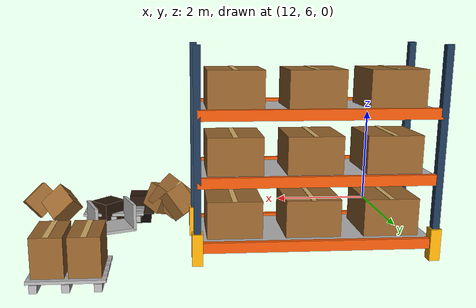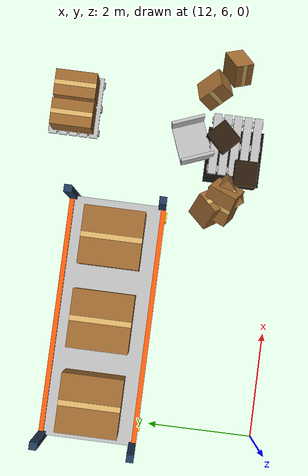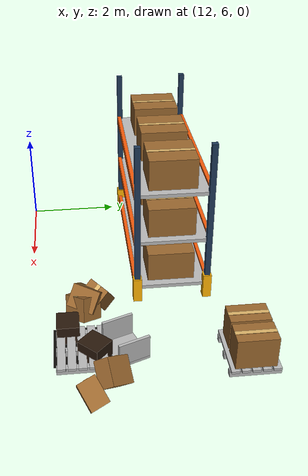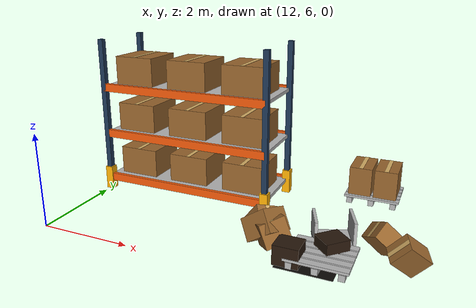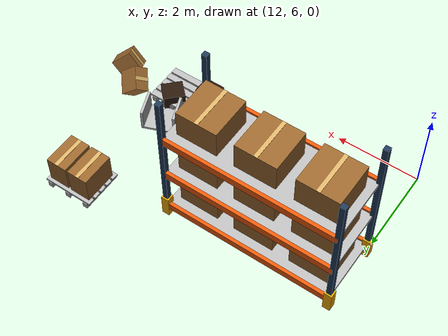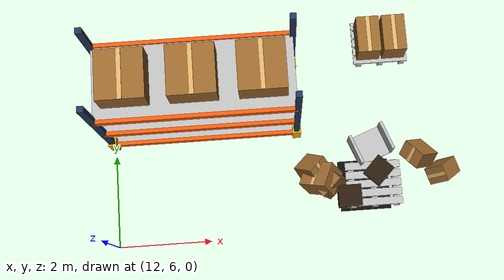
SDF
<sdf version="1.9">
 <world name="factory">
  <model name="rack_1_1_3">
   <static>true</static>
   <pose>14 9 0 0 0 0</pose>
   <link name="body">
    <visual name="post0_visual">
     <pose>-2 -0.75 1.8 0 0 0</pose>
     <geometry><box><size>0.12 0.12 3.6</size></box></geometry>
     <material><ambient>.12 .22 .34 1</ambient><diffuse>.12 .22 .34 1</diffuse></material>
    </visual>
    <collision name="post0_collision">
     <pose>-2 -0.75 1.8 0 0 0</pose>
     <geometry><box><size>0.12 0.12 3.6</size></box></geometry>
    </collision>
    <visual name="guard0_visual">
     <pose>-2 -0.75 0.275 0 0 0</pose>
     <geometry><box><size>0.18 0.18 0.55</size></box></geometry>
     <material><ambient>1 .7 .02 1</ambient><diffuse>1 .7 .02 1</diffuse></material>
    </visual>
    <collision name="guard0_collision">
     <pose>-2 -0.75 0.275 0 0 0</pose>
     <geometry><box><size>0.18 0.18 0.55</size></box></geometry>
    </collision>
    <visual name="post1_visual">
     <pose>2 -0.75 1.8 0 0 0</pose>
     <geometry><box><size>0.12 0.12 3.6</size></box></geometry>
     <material><ambient>.12 .22 .34 1</ambient><diffuse>.12 .22 .34 1</diffuse></material>
    </visual>
    <collision name="post1_collision">
     <pose>2 -0.75 1.8 0 0 0</pose>
     <geometry><box><size>0.12 0.12 3.6</size></box></geometry>
    </collision>
    <visual name="guard1_visual">
     <pose>2 -0.75 0.275 0 0 0</pose>
     <geometry><box><size>0.18 0.18 0.55</size></box></geometry>
     <material><ambient>1 .7 .02 1</ambient><diffuse>1 .7 .02 1</diffuse></material>
    </visual>
    <collision name="guard1_collision">
     <pose>2 -0.75 0.275 0 0 0</pose>
     <geometry><box><size>0.18 0.18 0.55</size></box></geometry>
    </collision>
    <visual name="post2_visual">
     <pose>-2 0.75 1.8 0 0 0</pose>
     <geometry><box><size>0.12 0.12 3.6</size></box></geometry>
     <material><ambient>.12 .22 .34 1</ambient><diffuse>.12 .22 .34 1</diffuse></material>
    </visual>
    <collision name="post2_collision">
     <pose>-2 0.75 1.8 0 0 0</pose>
     <geometry><box><size>0.12 0.12 3.6</size></box></geometry>
    </collision>
    <visual name="guard2_visual">
     <pose>-2 0.75 0.275 0 0 0</pose>
     <geometry><box><size>0.18 0.18 0.55</size></box></geometry>
     <material><ambient>1 .7 .02 1</ambient><diffuse>1 .7 .02 1</diffuse></material>
    </visual>
    <collision name="guard2_collision">
     <pose>-2 0.75 0.275 0 0 0</pose>
     <geometry><box><size>0.18 0.18 0.55</size></box></geometry>
    </collision>
    <visual name="post3_visual">
     <pose>2 0.75 1.8 0 0 0</pose>
     <geometry><box><size>0.12 0.12 3.6</size></box></geometry>
     <material><ambient>.12 .22 .34 1</ambient><diffuse>.12 .22 .34 1</diffuse></material>
    </visual>
    <collision name="post3_collision">
     <pose>2 0.75 1.8 0 0 0</pose>
     <geometry><box><size>0.12 0.12 3.6</size></box></geometry>
    </collision>
    <visual name="guard3_visual">
     <pose>2 0.75 0.275 0 0 0</pose>
     <geometry><box><size>0.18 0.18 0.55</size></box></geometry>
     <material><ambient>1 .7 .02 1</ambient><diffuse>1 .7 .02 1</diffuse></material>
    </visual>
    <collision name="guard3_collision">
     <pose>2 0.75 0.275 0 0 0</pose>
     <geometry><box><size>0.18 0.18 0.55</size></box></geometry>
    </collision>
    <visual name="shelf0_visual">
     <pose>0 0 0.3 0 0 0</pose>
     <geometry><mesh><uri>model://factory_scene_assets/meshes/wood_010.dae</uri></mesh></geometry>
    </visual>
    <collision name="shelf0_collision">
     <pose>0 0 0.3 0 0 0</pose>
     <geometry><box><size>4 1.5 0.08</size></box></geometry>
    </collision>
    <visual name="beam0_0_visual">
     <pose>0 -0.77 0.3 0 0 0</pose>
     <geometry><box><size>4 0.08 0.18</size></box></geometry>
     <material><ambient>.95 .35 .035 1</ambient><diffuse>.95 .35 .035 1</diffuse></material>
    </visual>
    <collision name="beam0_0_collision">
     <pose>0 -0.77 0.3 0 0 0</pose>
     <geometry><box><size>4 0.08 0.18</size></box></geometry>
    </collision>
    <visual name="beam0_1_visual">
     <pose>0 0.77 0.3 0 0 0</pose>
     <geometry><box><size>4 0.08 0.18</size></box></geometry>
     <material><ambient>.95 .35 .035 1</ambient><diffuse>.95 .35 .035 1</diffuse></material>
    </visual>
    <collision name="beam0_1_collision">
     <pose>0 0.77 0.3 0 0 0</pose>
     <geometry><box><size>4 0.08 0.18</size></box></geometry>
    </collision>
    <visual name="cargo0_0_visual">
     <pose>-1.35 0 0.665 0 0 0</pose>
     <geometry><box><size>0.95 1 0.65</size></box></geometry>
     <material><ambient>.60 .40 .18 1</ambient><diffuse>.60 .40 .18 1</diffuse></material>
    </visual>
    <collision name="cargo0_0_collision">
     <pose>-1.35 0 0.665 0 0 0</pose>
     <geometry><box><size>0.95 1 0.65</size></box></geometry>
    </collision>
    <visual name="cargo0_0_tape_visual">
     <pose>-1.35 0 0.993 0 0 0</pose>
     <geometry><box><size>0.09 1 0.006</size></box></geometry>
     <material><ambient>.85 .69 .4 1</ambient><diffuse>.85 .69 .4 1</diffuse></material>
    </visual>
    <visual name="cargo0_1_visual">
     <pose>0 0 0.665 0 0 0</pose>
     <geometry><box><size>0.95 1 0.65</size></box></geometry>
     <material><ambient>.60 .40 .18 1</ambient><diffuse>.60 .40 .18 1</diffuse></material>
    </visual>
    <collision name="cargo0_1_collision">
     <pose>0 0 0.665 0 0 0</pose>
     <geometry><box><size>0.95 1 0.65</size></box></geometry>
    </collision>
    <visual name="cargo0_1_tape_visual">
     <pose>0 0 0.993 0 0 0</pose>
     <geometry><box><size>0.09 1 0.006</size></box></geometry>
     <material><ambient>.85 .69 .4 1</ambient><diffuse>.85 .69 .4 1</diffuse></material>
    </visual>
    <visual name="cargo0_2_visual">
     <pose>1.35 0 0.665 0 0 0</pose>
     <geometry><box><size>0.95 1 0.65</size></box></geometry>
     <material><ambient>.60 .40 .18 1</ambient><diffuse>.60 .40 .18 1</diffuse></material>
    </visual>
    <collision name="cargo0_2_collision">
     <pose>1.35 0 0.665 0 0 0</pose>
     <geometry><box><size>0.95 1 0.65</size></box></geometry>
    </collision>
    <visual name="cargo0_2_tape_visual">
     <pose>1.35 0 0.993 0 0 0</pose>
     <geometry><box><size>0.09 1 0.006</size></box></geometry>
     <material><ambient>.85 .69 .4 1</ambient><diffuse>.85 .69 .4 1</diffuse></material>
    </visual>
    <visual name="shelf1_visual">
     <pose>0 0 1.4 0 0 0</pose>
     <geometry><mesh><uri>model://factory_scene_assets/meshes/wood_010.dae</uri></mesh></geometry>
    </visual>
    <collision name="shelf1_collision">
     <pose>0 0 1.4 0 0 0</pose>
     <geometry><box><size>4 1.5 0.08</size></box></geometry>
    </collision>
    <visual name="beam1_0_visual">
     <pose>0 -0.77 1.4 0 0 0</pose>
     <geometry><box><size>4 0.08 0.18</size></box></geometry>
     <material><ambient>.95 .35 .035 1</ambient><diffuse>.95 .35 .035 1</diffuse></material>
    </visual>
    <collision name="beam1_0_collision">
     <pose>0 -0.77 1.4 0 0 0</pose>
     <geometry><box><size>4 0.08 0.18</size></box></geometry>
    </collision>
    <visual name="beam1_1_visual">
     <pose>0 0.77 1.4 0 0 0</pose>
     <geometry><box><size>4 0.08 0.18</size></box></geometry>
     <material><ambient>.95 .35 .035 1</ambient><diffuse>.95 .35 .035 1</diffuse></material>
    </visual>
    <collision name="beam1_1_collision">
     <pose>0 0.77 1.4 0 0 0</pose>
     <geometry><box><size>4 0.08 0.18</size></box></geometry>
    </collision>
    <visual name="cargo1_0_visual">
     <pose>-1.35 0 1.765 0 0 0</pose>
     <geometry><box><size>0.95 1 0.65</size></box></geometry>
     <material><ambient>.60 .40 .18 1</ambient><diffuse>.60 .40 .18 1</diffuse></material>
    </visual>
    <collision name="cargo1_0_collision">
     <pose>-1.35 0 1.765 0 0 0</pose>
     <geometry><box><size>0.95 1 0.65</size></box></geometry>
    </collision>
    <visual name="cargo1_0_tape_visual">
     <pose>-1.35 0 2.093 0 0 0</pose>
     <geometry><box><size>0.09 1 0.006</size></box></geometry>
     <material><ambient>.85 .69 .4 1</ambient><diffuse>.85 .69 .4 1</diffuse></material>
    </visual>
    <visual name="cargo1_1_visual">
     <pose>0 0 1.765 0 0 0</pose>
     <geometry><box><size>0.95 1 0.65</size></box></geometry>
     <material><ambient>.60 .40 .18 1</ambient><diffuse>.60 .40 .18 1</diffuse></material>
    </visual>
    <collision name="cargo1_1_collision">
     <pose>0 0 1.765 0 0 0</pose>
     <geometry><box><size>0.95 1 0.65</size></box></geometry>
    </collision>
    <visual name="cargo1_1_tape_visual">
     <pose>0 0 2.093 0 0 0</pose>
     <geometry><box><size>0.09 1 0.006</size></box></geometry>
     <material><ambient>.85 .69 .4 1</ambient><diffuse>.85 .69 .4 1</diffuse></material>
    </visual>
    <visual name="cargo1_2_visual">
     <pose>1.35 0 1.765 0 0 0</pose>
     <geometry><box><size>0.95 1 0.65</size></box></geometry>
     <material><ambient>.60 .40 .18 1</ambient><diffuse>.60 .40 .18 1</diffuse></material>
    </visual>
    <collision name="cargo1_2_collision">
     <pose>1.35 0 1.765 0 0 0</pose>
     <geometry><box><size>0.95 1 0.65</size></box></geometry>
    </collision>
    <visual name="cargo1_2_tape_visual">
     <pose>1.35 0 2.093 0 0 0</pose>
     <geometry><box><size>0.09 1 0.006</size></box></geometry>
     <material><ambient>.85 .69 .4 1</ambient><diffuse>.85 .69 .4 1</diffuse></material>
    </visual>
    <visual name="shelf2_visual">
     <pose>0 0 2.5 0 0 0</pose>
     <geometry><mesh><uri>model://factory_scene_assets/meshes/wood_010.dae</uri></mesh></geometry>
    </visual>
    <collision name="shelf2_collision">
     <pose>0 0 2.5 0 0 0</pose>
     <geometry><box><size>4 1.5 0.08</size></box></geometry>
    </collision>
    <visual name="beam2_0_visual">
     <pose>0 -0.77 2.5 0 0 0</pose>
     <geometry><box><size>4 0.08 0.18</size></box></geometry>
     <material><ambient>.95 .35 .035 1</ambient><diffuse>.95 .35 .035 1</diffuse></material>
    </visual>
    <collision name="beam2_0_collision">
     <pose>0 -0.77 2.5 0 0 0</pose>
     <geometry><box><size>4 0.08 0.18</size></box></geometry>
    </collision>
    <visual name="beam2_1_visual">
     <pose>0 0.77 2.5 0 0 0</pose>
     <geometry><box><size>4 0.08 0.18</size></box></geometry>
     <material><ambient>.95 .35 .035 1</ambient><diffuse>.95 .35 .035 1</diffuse></material>
    </visual>
    <collision name="beam2_1_collision">
     <pose>0 0.77 2.5 0 0 0</pose>
     <geometry><box><size>4 0.08 0.18</size></box></geometry>
    </collision>
    <visual name="cargo2_0_visual">
     <pose>-1.35 0 2.865 0 0 0</pose>
     <geometry><box><size>0.95 1 0.65</size></box></geometry>
     <material><ambient>.60 .40 .18 1</ambient><diffuse>.60 .40 .18 1</diffuse></material>
    </visual>
    <collision name="cargo2_0_collision">
     <pose>-1.35 0 2.865 0 0 0</pose>
     <geometry><box><size>0.95 1 0.65</size></box></geometry>
    </collision>
    <visual name="cargo2_0_tape_visual">
     <pose>-1.35 0 3.193 0 0 0</pose>
     <geometry><box><size>0.09 1 0.006</size></box></geometry>
     <material><ambient>.85 .69 .4 1</ambient><diffuse>.85 .69 .4 1</diffuse></material>
    </visual>
    <visual name="cargo2_1_visual">
     <pose>0 0 2.865 0 0 0</pose>
     <geometry><box><size>0.95 1 0.65</size></box></geometry>
     <material><ambient>.60 .40 .18 1</ambient><diffuse>.60 .40 .18 1</diffuse></material>
    </visual>
    <collision name="cargo2_1_collision">
     <pose>0 0 2.865 0 0 0</pose>
     <geometry><box><size>0.95 1 0.65</size></box></geometry>
    </collision>
    <visual name="cargo2_1_tape_visual">
     <pose>0 0 3.193 0 0 0</pose>
     <geometry><box><size>0.09 1 0.006</size></box></geometry>
     <material><ambient>.85 .69 .4 1</ambient><diffuse>.85 .69 .4 1</diffuse></material>
    </visual>
    <visual name="cargo2_2_visual">
     <pose>1.35 0 2.865 0 0 0</pose>
     <geometry><box><size>0.95 1 0.65</size></box></geometry>
     <material><ambient>.60 .40 .18 1</ambient><diffuse>.60 .40 .18 1</diffuse></material>
    </visual>
    <collision name="cargo2_2_collision">
     <pose>1.35 0 2.865 0 0 0</pose>
     <geometry><box><size>0.95 1 0.65</size></box></geometry>
    </collision>
    <visual name="cargo2_2_tape_visual">
     <pose>1.35 0 3.193 0 0 0</pose>
     <geometry><box><size>0.09 1 0.006</size></box></geometry>
     <material><ambient>.85 .69 .4 1</ambient><diffuse>.85 .69 .4 1</diffuse></material>
    </visual>
   </link>
  </model>
  <model name="organized_pallet_1_3">
   <static>true</static>
   <pose>18 10.2 0 0 0 0</pose>
   <link name="body">
    <visual name="runner0_visual">
     <pose>-0.48 0 0.065 0 0 0</pose>
     <geometry><mesh><uri>model://factory_scene_assets/meshes/wood_011.dae</uri></mesh></geometry>
    </visual>
    <collision name="runner0_collision">
     <pose>-0.48 0 0.065 0 0 0</pose>
     <geometry><box><size>0.12 1 0.13</size></box></geometry>
    </collision>
    <visual name="runner1_visual">
     <pose>0 0 0.065 0 0 0</pose>
     <geometry><mesh><uri>model://factory_scene_assets/meshes/wood_011.dae</uri></mesh></geometry>
    </visual>
    <collision name="runner1_collision">
     <pose>0 0 0.065 0 0 0</pose>
     <geometry><box><size>0.12 1 0.13</size></box></geometry>
    </collision>
    <visual name="runner2_visual">
     <pose>0.48 0 0.065 0 0 0</pose>
     <geometry><mesh><uri>model://factory_scene_assets/meshes/wood_011.dae</uri></mesh></geometry>
    </visual>
    <collision name="runner2_collision">
     <pose>0.48 0 0.065 0 0 0</pose>
     <geometry><box><size>0.12 1 0.13</size></box></geometry>
    </collision>
    <visual name="plank0_visual">
     <pose>0 -0.4 0.155 0 0 0</pose>
     <geometry><mesh><uri>model://factory_scene_assets/meshes/wood_012.dae</uri></mesh></geometry>
    </visual>
    <collision name="plank0_collision">
     <pose>0 -0.4 0.155 0 0 0</pose>
     <geometry><box><size>1.2 0.16 0.05</size></box></geometry>
    </collision>
    <visual name="plank1_visual">
     <pose>0 -0.2 0.155 0 0 0</pose>
     <geometry><mesh><uri>model://factory_scene_assets/meshes/wood_012.dae</uri></mesh></geometry>
    </visual>
    <collision name="plank1_collision">
     <pose>0 -0.2 0.155 0 0 0</pose>
     <geometry><box><size>1.2 0.16 0.05</size></box></geometry>
    </collision>
    <visual name="plank2_visual">
     <pose>0 0 0.155 0 0 0</pose>
     <geometry><mesh><uri>model://factory_scene_assets/meshes/wood_012.dae</uri></mesh></geometry>
    </visual>
    <collision name="plank2_collision">
     <pose>0 0 0.155 0 0 0</pose>
     <geometry><box><size>1.2 0.16 0.05</size></box></geometry>
    </collision>
    <visual name="plank3_visual">
     <pose>0 0.2 0.155 0 0 0</pose>
     <geometry><mesh><uri>model://factory_scene_assets/meshes/wood_012.dae</uri></mesh></geometry>
    </visual>
    <collision name="plank3_collision">
     <pose>0 0.2 0.155 0 0 0</pose>
     <geometry><box><size>1.2 0.16 0.05</size></box></geometry>
    </collision>
    <visual name="plank4_visual">
     <pose>0 0.4 0.155 0 0 0</pose>
     <geometry><mesh><uri>model://factory_scene_assets/meshes/wood_012.dae</uri></mesh></geometry>
    </visual>
    <collision name="plank4_collision">
     <pose>0 0.4 0.155 0 0 0</pose>
     <geometry><box><size>1.2 0.16 0.05</size></box></geometry>
    </collision>
    <visual name="load0_visual">
     <pose>-0.28 0 0.505 0 0 0</pose>
     <geometry><box><size>0.5 0.8 0.65</size></box></geometry>
     <material><ambient>.60 .40 .18 1</ambient><diffuse>.60 .40 .18 1</diffuse></material>
    </visual>
    <collision name="load0_collision">
     <pose>-0.28 0 0.505 0 0 0</pose>
     <geometry><box><size>0.5 0.8 0.65</size></box></geometry>
    </collision>
    <visual name="load0_tape_visual">
     <pose>-0.28 0 0.833 0 0 0</pose>
     <geometry><box><size>0.09 0.8 0.006</size></box></geometry>
     <material><ambient>.85 .69 .4 1</ambient><diffuse>.85 .69 .4 1</diffuse></material>
    </visual>
    <visual name="load1_visual">
     <pose>0.28 0 0.505 0 0 0</pose>
     <geometry><box><size>0.5 0.8 0.65</size></box></geometry>
     <material><ambient>.60 .40 .18 1</ambient><diffuse>.60 .40 .18 1</diffuse></material>
    </visual>
    <collision name="load1_collision">
     <pose>0.28 0 0.505 0 0 0</pose>
     <geometry><box><size>0.5 0.8 0.65</size></box></geometry>
    </collision>
    <visual name="load1_tape_visual">
     <pose>0.28 0 0.833 0 0 0</pose>
     <geometry><box><size>0.09 0.8 0.006</size></box></geometry>
     <material><ambient>.85 .69 .4 1</ambient><diffuse>.85 .69 .4 1</diffuse></material>
    </visual>
   </link>
  </model>
  <model name="fallen_pallet_5">
   <static>true</static>
   <pose>17.6 7 0 0 0 0</pose>
   <link name="body">
    <visual name="runner0_visual">
     <pose>-0.48 0 0.065 0 0 0</pose>
     <geometry><mesh><uri>model://factory_scene_assets/meshes/wood_011.dae</uri></mesh></geometry>
    </visual>
    <collision name="runner0_collision">
     <pose>-0.48 0 0.065 0 0 0</pose>
     <geometry><box><size>0.12 1 0.13</size></box></geometry>
    </collision>
    <visual name="runner1_visual">
     <pose>0 0 0.065 0 0 0</pose>
     <geometry><mesh><uri>model://factory_scene_assets/meshes/wood_011.dae</uri></mesh></geometry>
    </visual>
    <collision name="runner1_collision">
     <pose>0 0 0.065 0 0 0</pose>
     <geometry><box><size>0.12 1 0.13</size></box></geometry>
    </collision>
    <visual name="runner2_visual">
     <pose>0.48 0 0.065 0 0 0</pose>
     <geometry><mesh><uri>model://factory_scene_assets/meshes/wood_011.dae</uri></mesh></geometry>
    </visual>
    <collision name="runner2_collision">
     <pose>0.48 0 0.065 0 0 0</pose>
     <geometry><box><size>0.12 1 0.13</size></box></geometry>
    </collision>
    <visual name="plank0_visual">
     <pose>0 -0.4 0.155 0 0 0</pose>
     <geometry><mesh><uri>model://factory_scene_assets/meshes/wood_012.dae</uri></mesh></geometry>
    </visual>
    <collision name="plank0_collision">
     <pose>0 -0.4 0.155 0 0 0</pose>
     <geometry><box><size>1.2 0.16 0.05</size></box></geometry>
    </collision>
    <visual name="plank1_visual">
     <pose>0 -0.2 0.155 0 0 0</pose>
     <geometry><mesh><uri>model://factory_scene_assets/meshes/wood_012.dae</uri></mesh></geometry>
    </visual>
    <collision name="plank1_collision">
     <pose>0 -0.2 0.155 0 0 0</pose>
     <geometry><box><size>1.2 0.16 0.05</size></box></geometry>
    </collision>
    <visual name="plank2_visual">
     <pose>0 0 0.155 0 0 0</pose>
     <geometry><mesh><uri>model://factory_scene_assets/meshes/wood_012.dae</uri></mesh></geometry>
    </visual>
    <collision name="plank2_collision">
     <pose>0 0 0.155 0 0 0</pose>
     <geometry><box><size>1.2 0.16 0.05</size></box></geometry>
    </collision>
    <visual name="plank3_visual">
     <pose>0 0.2 0.155 0 0 0</pose>
     <geometry><mesh><uri>model://factory_scene_assets/meshes/wood_012.dae</uri></mesh></geometry>
    </visual>
    <collision name="plank3_collision">
     <pose>0 0.2 0.155 0 0 0</pose>
     <geometry><box><size>1.2 0.16 0.05</size></box></geometry>
    </collision>
    <visual name="plank4_visual">
     <pose>0 0.4 0.155 0 0 0</pose>
     <geometry><mesh><uri>model://factory_scene_assets/meshes/wood_012.dae</uri></mesh></geometry>
    </visual>
    <collision name="plank4_collision">
     <pose>0 0.4 0.155 0 0 0</pose>
     <geometry><box><size>1.2 0.16 0.05</size></box></geometry>
    </collision>
   </link>
  </model>
  <model name="fallen_box_05_0">
   <static>true</static>
   <pose>18.6 7.544163 0 0 0 0</pose>
   <link name="body">
    <visual name="box_visual">
     <pose>0 0 0.4117971 0.7283645 -0.4586143 -0.9024185</pose>
     <geometry><box><size>0.5437887 0.3573476 0.5224043</size></box></geometry>
     <material><ambient>.60 .40 .18 1</ambient><diffuse>.60 .40 .18 1</diffuse></material>
    </visual>
    <collision name="box_collision">
     <pose>0 0 0.4117971 0.7283645 -0.4586143 -0.9024185</pose>
     <geometry><box><size>0.5437887 0.3573476 0.5224043</size></box></geometry>
    </collision>
    <visual name="box_tape_visual">
     <pose>-0.192117 -0.04048222 0.588588 0.7283645 -0.4586143 -0.9024185</pose>
     <geometry><box><size>0.09 0.3573476 0.006</size></box></geometry>
     <material><ambient>.85 .69 .4 1</ambient><diffuse>.85 .69 .4 1</diffuse></material>
    </visual>
   </link>
  </model>
  <model name="fallen_box_05_1">
   <static>true</static>
   <pose>16.6 7.077337 0 0 0 0</pose>
   <link name="body">
    <visual name="box_visual">
     <pose>0 0 0.3697262 -0.2723756 -0.2607159 0.7513945</pose>
     <geometry><box><size>0.5360832 0.4697662 0.4934087</size></box></geometry>
     <material><ambient>.60 .40 .18 1</ambient><diffuse>.60 .40 .18 1</diffuse></material>
    </visual>
    <collision name="box_collision">
     <pose>0 0 0.3697262 -0.2723756 -0.2607159 0.7513945</pose>
     <geometry><box><size>0.5360832 0.4697662 0.4934087</size></box></geometry>
    </collision>
    <visual name="box_tape_visual">
     <pose>-0.09115925 0.006766983 0.6020976 -0.2723756 -0.2607159 0.7513945</pose>
     <geometry><box><size>0.09 0.4697662 0.006</size></box></geometry>
     <material><ambient>.85 .69 .4 1</ambient><diffuse>.85 .69 .4 1</diffuse></material>
    </visual>
   </link>
  </model>
  <model name="fallen_box_05_3">
   <static>true</static>
   <pose>16.44 7.147922 0 0 0 0</pose>
   <link name="body">
    <visual name="box_visual">
     <pose>0 0 0.4408696 0.2558858 0.6164704 2.87788</pose>
     <geometry><box><size>0.6480562 0.5675199 0.4685582</size></box></geometry>
     <material><ambient>.60 .40 .18 1</ambient><diffuse>.60 .40 .18 1</diffuse></material>
    </visual>
    <collision name="box_collision">
     <pose>0 0 0.4408696 0.2558858 0.6164704 2.87788</pose>
     <geometry><box><size>0.6480562 0.5675199 0.4685582</size></box></geometry>
    </collision>
    <visual name="box_tape_visual">
     <pose>-0.1124754 0.09257492 0.6281676 0.2558858 0.6164704 2.87788</pose>
     <geometry><box><size>0.09 0.5675199 0.006</size></box></geometry>
     <material><ambient>.85 .69 .4 1</ambient><diffuse>.85 .69 .4 1</diffuse></material>
    </visual>
   </link>
  </model>
  <model name="fallen_box_05_5">
   <static>true</static>
   <pose>16.28 7.39656 0 0 0 0</pose>
   <link name="body">
    <visual name="box_visual">
     <pose>0 0 0.386024 0.6622037 0.2674954 0.7980377</pose>
     <geometry><box><size>0.4733507 0.3381638 0.5606238</size></box></geometry>
     <material><ambient>.60 .40 .18 1</ambient><diffuse>.60 .40 .18 1</diffuse></material>
    </visual>
    <collision name="box_collision">
     <pose>0 0 0.386024 0.6622037 0.2674954 0.7980377</pose>
     <geometry><box><size>0.4733507 0.3381638 0.5606238</size></box></geometry>
    </collision>
    <visual name="box_tape_visual">
     <pose>0.1659504 -0.07932481 0.6015088 0.6622037 0.2674954 0.7980377</pose>
     <geometry><box><size>0.09 0.3381638 0.006</size></box></geometry>
     <material><ambient>.85 .69 .4 1</ambient><diffuse>.85 .69 .4 1</diffuse></material>
    </visual>
   </link>
  </model>
  <model name="fallen_box_05_6">
   <static>true</static>
   <pose>19.08 7.143426 0 0 0 0</pose>
   <link name="body">
    <visual name="box_visual">
     <pose>0 0 0.3986287 -0.8767356 -0.2884195 1.937228</pose>
     <geometry><box><size>0.3661128 0.4711343 0.5315028</size></box></geometry>
     <material><ambient>.60 .40 .18 1</ambient><diffuse>.60 .40 .18 1</diffuse></material>
    </visual>
    <collision name="box_collision">
     <pose>0 0 0.3986287 -0.8767356 -0.2884195 1.937228</pose>
     <geometry><box><size>0.3661128 0.4711343 0.5315028</size></box></geometry>
    </collision>
    <visual name="box_tape_visual">
     <pose>-0.1753434 -0.1196653 0.5634385 -0.8767356 -0.2884195 1.937228</pose>
     <geometry><box><size>0.09 0.4711343 0.006</size></box></geometry>
     <material><ambient>.85 .69 .4 1</ambient><diffuse>.85 .69 .4 1</diffuse></material>
    </visual>
   </link>
  </model>
  <model name="broken_crate_05">
   <static>true</static>
   <pose>17.6 7.85 0 0 0 0.3669105</pose>
   <link name="body">
    <visual name="base_visual">
     <pose>0 0 0.03 0 0 0</pose>
     <geometry><mesh><uri>model://factory_scene_assets/meshes/wood_013.dae</uri></mesh></geometry>
    </visual>
    <collision name="base_collision">
     <pose>0 0 0.03 0 0 0</pose>
     <geometry><box><size>0.8 0.65 0.06</size></box></geometry>
    </collision>
    <visual name="side0_visual">
     <pose>-0.37 0 0.28 0 0 0</pose>
     <geometry><mesh><uri>model://factory_scene_assets/meshes/wood_014.dae</uri></mesh></geometry>
    </visual>
    <collision name="side0_collision">
     <pose>-0.37 0 0.28 0 0 0</pose>
     <geometry><box><size>0.06 0.65 0.5</size></box></geometry>
    </collision>
    <visual name="side1_visual">
     <pose>0.37 0 0.28 0 0 0</pose>
     <geometry><mesh><uri>model://factory_scene_assets/meshes/wood_014.dae</uri></mesh></geometry>
    </visual>
    <collision name="side1_collision">
     <pose>0.37 0 0.28 0 0 0</pose>
     <geometry><box><size>0.06 0.65 0.5</size></box></geometry>
    </collision>
   </link>
  </model>
  <model name="fire_05">
   <static>true</static>
   <pose>17.4 7 0 0 0 0</pose>
   <link name="body">
    <visual name="scorch_visual">
     <pose>0 0 0.003 0 0 0</pose>
     <geometry><box><size>1.1 1.1 0.004</size></box></geometry>
     <material><ambient>.045 .035 .025 1</ambient><diffuse>.045 .035 .025 1</diffuse></material>
    </visual>
    <visual name="charred_crate0_visual">
     <pose>-0.35 -0.25 0.2 0 0 0</pose>
     <geometry><box><size>0.5 0.45 0.4</size></box></geometry>
     <material><ambient>.16 .095 .045 1</ambient><diffuse>.16 .095 .045 1</diffuse></material>
    </visual>
    <collision name="charred_crate0_collision">
     <pose>-0.35 -0.25 0.2 0 0 0</pose>
     <geometry><box><size>0.5 0.45 0.4</size></box></geometry>
    </collision>
    <visual name="charred_crate1_visual">
     <pose>0.32 0.25 0.2 0 0 0.8</pose>
     <geometry><box><size>0.5 0.45 0.4</size></box></geometry>
     <material><ambient>.16 .095 .045 1</ambient><diffuse>.16 .095 .045 1</diffuse></material>
    </visual>
    <collision name="charred_crate1_collision">
     <pose>0.32 0.25 0.2 0 0 0.8</pose>
     <geometry><box><size>0.5 0.45 0.4</size></box></geometry>
    </collision>
    <particle_emitter name="flame" type="box">
     <pose>0 0 .35 0 -1.57079633 0</pose>
     <emitting>true</emitting>
     <size>.12 .65 .65</size>
     <particle_size>.65 1.15 .65</particle_size>
     <lifetime>0.9</lifetime>
     <rate>40</rate>
     <min_velocity>0.35</min_velocity>
     <max_velocity>1.1</max_velocity>
     <scale_rate>0.02</scale_rate>
     <particle_scatter_ratio>.05</particle_scatter_ratio>
     <color_start>1 1 1 1</color_start>
     <color_end>1 .65 .35 0</color_end>
     <material>
      <diffuse>1 1 1 1</diffuse>
      <emissive>1 .55 .1 1</emissive>
      <pbr><metal><albedo_map>model://factory_scene_assets/textures/flame_colored.png</albedo_map></metal></pbr>
     </material>
    </particle_emitter>
    <particle_emitter name="smoke" type="box">
     <pose>0 0 1.25 0 -1.57079633 0</pose>
     <emitting>true</emitting>
     <size>.15 .85 .85</size>
     <particle_size>.8 .8 .8</particle_size>
     <lifetime>3</lifetime>
     <rate>7</rate>
     <min_velocity>0.45</min_velocity>
     <max_velocity>0.8</max_velocity>
     <scale_rate>0.45</scale_rate>
     <particle_scatter_ratio>.05</particle_scatter_ratio>
     <color_start>1 1 1 1</color_start>
     <color_end>.65 .65 .65 0</color_end>
     <material>
      <diffuse>1 1 1 1</diffuse>
      <emissive>0 0 0 1</emissive>
      <pbr><metal><albedo_map>model://factory_scene_assets/textures/smoke_gray.png</albedo_map></metal></pbr>
     </material>
    </particle_emitter>
    <light name="fire_glow" type="point">
     <pose>0 0 .8 0 0 0</pose>
     <diffuse>1 .38 .025 1</diffuse>
     <cast_shadows>false</cast_shadows>
     <attenuation>
      <range>4</range>
      <constant>1</constant>
      <linear>0.5</linear>
      <quadratic>0.2</quadratic>
     </attenuation>
    </light>
   </link>
  </model>
 </world>
</sdf>
